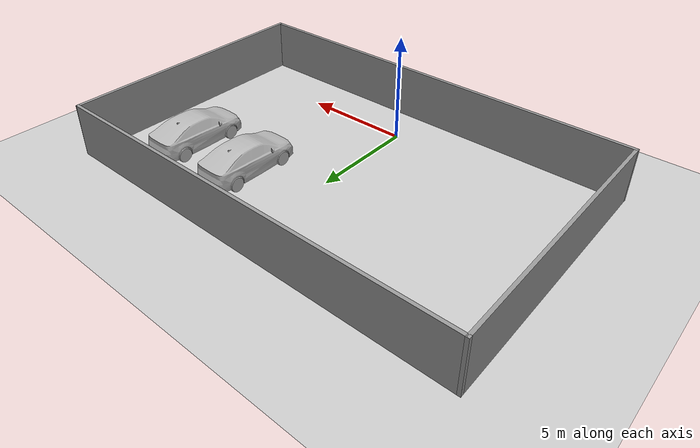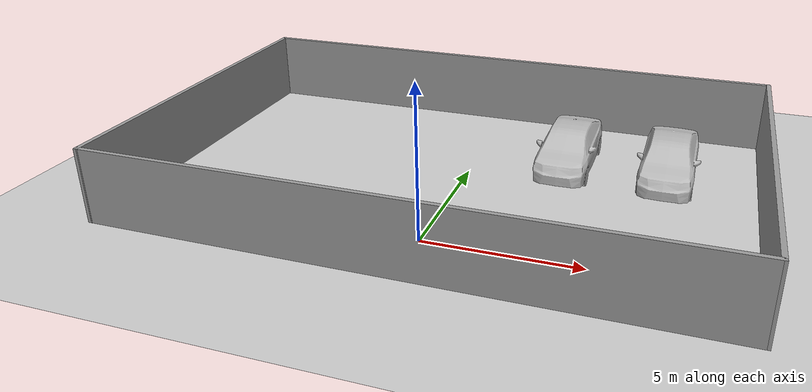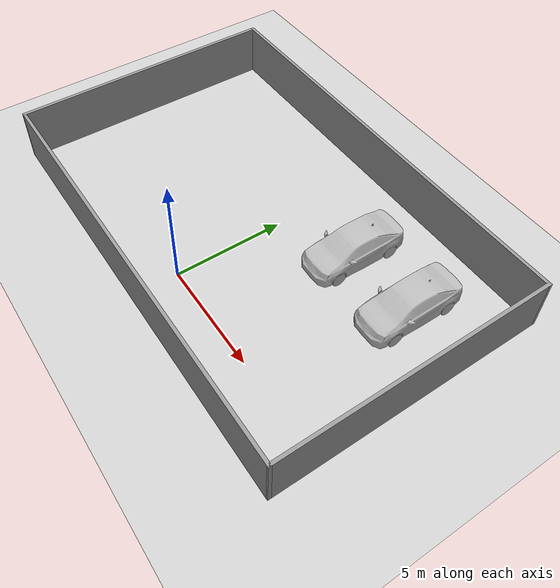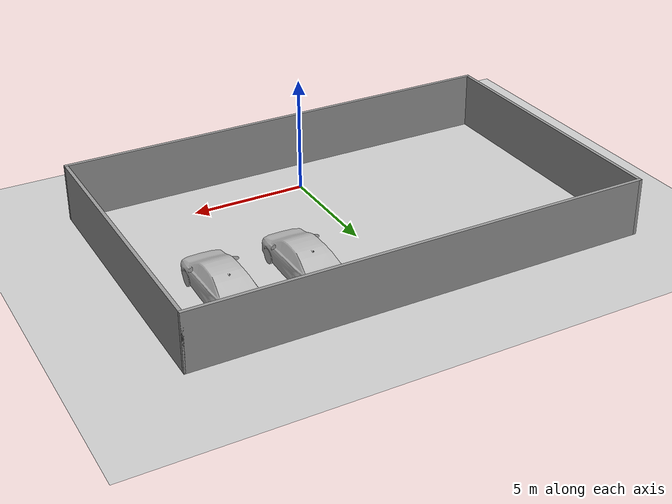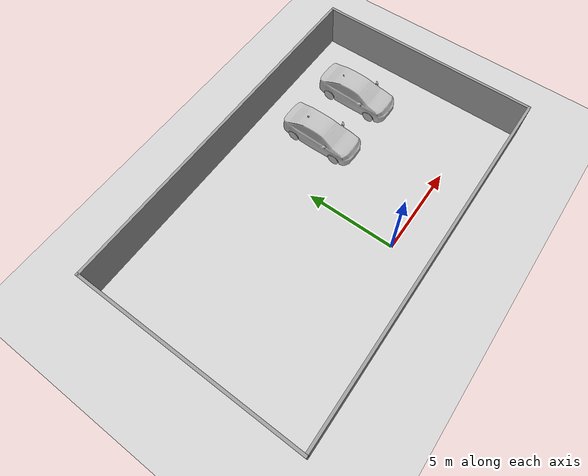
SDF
<sdf version="1.6">
 <world name="default">
  <light name="sun" type="directional">
   <pose>0 0 10 0 -0 0</pose>
   <diffuse>0.8 0.8 0.8 1</diffuse>
   <specular>0.2 0.2 0.2 1</specular>
   <attenuation>
    <range>1000</range>
    <constant>0.9</constant>
    <linear>0.01</linear>
    <quadratic>0.001</quadratic>
   </attenuation>
   <direction>-0.5 0.1 -0.9</direction>
  </light>
  <model name="ground_plane">
   <static>1</static>
   <link name="link">
    <collision name="collision">
     <geometry><plane><normal>0 0 1</normal><size>100 100</size></plane></geometry>
     <surface><friction><ode><mu>100</mu><mu2>50</mu2></ode></friction></surface>
    </collision>
    <visual name="visual">
     <cast_shadows>0</cast_shadows>
     <geometry><plane><normal>0 0 1</normal><size>100 100</size></plane></geometry>
     <material>
      <script><uri>file://media/materials/scripts/gazebo.material</uri><name>Gazebo/Grey</name></script>
     </material>
    </visual>
   </link>
  </model>
  <gravity>0 0 -9.8</gravity>
  <magnetic_field>6e-06 2.3e-05 -4.2e-05</magnetic_field>
  <atmosphere type="adiabatic"/>
  <physics name="default_physics" default="0" type="ode">
   <max_step_size>0.001</max_step_size>
   <real_time_factor>1</real_time_factor>
   <real_time_update_rate>1000</real_time_update_rate>
  </physics>
  <scene><ambient>0.4 0.4 0.4 1</ambient><background>0.7 0.7 0.7 1</background><shadows>1</shadows></scene>
  <spherical_coordinates>
   <surface_model>EARTH_WGS84</surface_model>
   <latitude_deg>0</latitude_deg>
   <longitude_deg>0</longitude_deg>
   <elevation>0</elevation>
   <heading_deg>0</heading_deg>
  </spherical_coordinates>
  <model name="park">
   <pose>-0.176874 4.10784 0 0 -0 0</pose>
   <link name="Wall_16">
    <collision name="Wall_16_Collision">
     <geometry><box><size>12.507 0.15 2.5</size></box></geometry>
     <pose>0 0 1.25 0 -0 0</pose>
    </collision>
    <visual name="Wall_16_Visual">
     <pose>0 0 1.25 0 -0 0</pose>
     <geometry><box><size>12.507 0.15 2.5</size></box></geometry>
     <material>
      <script><uri>file://media/materials/scripts/gazebo.material</uri><name>Gazebo/Grey</name></script>
      <ambient>1 1 1 1</ambient>
     </material>
     <meta><layer>0</layer></meta>
    </visual>
    <pose>-9.86413 1.2e-05 0 0 -0 -1.5708</pose>
   </link>
   <link name="Wall_18">
    <collision name="Wall_18_Collision">
     <geometry><box><size>12.5 0.15 2.5</size></box></geometry>
     <pose>0 0 1.25 0 -0 0</pose>
    </collision>
    <visual name="Wall_18_Visual">
     <pose>0 0 1.25 0 -0 0</pose>
     <geometry><box><size>12.5 0.15 2.5</size></box></geometry>
     <material>
      <script><uri>file://media/materials/scripts/gazebo.material</uri><name>Gazebo/Grey</name></script>
      <ambient>1 1 1 1</ambient>
     </material>
     <meta><layer>0</layer></meta>
    </visual>
    <pose>9.86413 0.003255 0 0 -0 1.5708</pose>
   </link>
   <link name="Wall_19">
    <collision name="Wall_19_Collision">
     <geometry><box><size>19.8783 0.15 2.5</size></box></geometry>
     <pose>0 0 1.25 0 -0 0</pose>
    </collision>
    <visual name="Wall_19_Visual">
     <pose>0 0 1.25 0 -0 0</pose>
     <geometry><box><size>19.8783 0.15 2.5</size></box></geometry>
     <material>
      <script><uri>file://media/materials/scripts/gazebo.material</uri><name>Gazebo/Grey</name></script>
      <ambient>1 1 1 1</ambient>
     </material>
     <meta><layer>0</layer></meta>
    </visual>
    <pose>0 6.17838 0 0 -0 3.14158</pose>
   </link>
   <link name="Wall_21">
    <collision name="Wall_21_Collision">
     <geometry><box><size>19.8791 0.15 2.5</size></box></geometry>
     <pose>0 0 1.25 0 -0 0</pose>
    </collision>
    <visual name="Wall_21_Visual">
     <pose>0 0 1.25 0 -0 0</pose>
     <geometry><box><size>19.8791 0.15 2.5</size></box></geometry>
     <material>
      <script><uri>file://media/materials/scripts/gazebo.material</uri><name>Gazebo/Grey</name></script>
      <ambient>1 1 1 1</ambient>
     </material>
     <meta><layer>0</layer></meta>
    </visual>
    <pose>0 -6.17512 0 0 -0 -3.14125</pose>
   </link>
   <static>1</static>
  </model>
  <model name="car_model_1">
   <link name="link_1">
    <inertial>
     <mass>1</mass>
     <inertia>
      <ixx>0.166667</ixx>
      <ixy>0</ixy>
      <ixz>0</ixz>
      <iyy>0.166667</iyy>
      <iyz>0</iyz>
      <izz>0.166667</izz>
     </inertia>
    </inertial>
    <visual name="visual">
     <pose>0 0 0.2 0 -0 0</pose>
     <geometry>
      <mesh><uri>model://car_model_1/meshes/car_model_1.obj</uri><scale>0.057 0.057 0.057</scale></mesh>
     </geometry>
     <material>
      <script>
       <uri>model://car_model_1/materials/scripts</uri>
       <uri>model://car_model_1/materials/textures</uri>
       <name>carModel1Mat/Sheet</name>
      </script>
     </material>
    </visual>
    <collision name="collision">
     <pose>0 0 0.2 0 -0 0</pose>
     <geometry>
      <mesh><uri>model://car_model_1/meshes/car_model_1.obj</uri><scale>0.052 0.052 0.052</scale></mesh>
     </geometry>
     <surface>
      <friction>
       <ode><mu>1</mu><mu2>1</mu2><fdir1>0 0 0</fdir1><slip1>0</slip1><slip2>0</slip2></ode>
       <torsional>
        <coefficient>1</coefficient>
        <patch_radius>0</patch_radius>
        <surface_radius>0</surface_radius>
        <use_patch_radius>1</use_patch_radius>
        <ode><slip>0</slip></ode>
       </torsional>
      </friction>
      <bounce><restitution_coefficient>0</restitution_coefficient><threshold>1e+06</threshold></bounce>
      <contact>
       <collide_without_contact>0</collide_without_contact>
       <collide_without_contact_bitmask>1</collide_without_contact_bitmask>
       <collide_bitmask>1</collide_bitmask>
       <ode>
        <soft_cfm>0</soft_cfm>
        <soft_erp>0.2</soft_erp>
        <kp>1e+13</kp>
        <kd>1</kd>
        <max_vel>0.01</max_vel>
        <min_depth>0</min_depth>
       </ode>
       <bullet>
        <split_impulse>1</split_impulse>
        <split_impulse_penetration_threshold>-0.01</split_impulse_penetration_threshold>
        <soft_cfm>0</soft_cfm>
        <soft_erp>0.2</soft_erp>
        <kp>1e+13</kp>
        <kd>1</kd>
       </bullet>
      </contact>
     </surface>
    </collision>
   </link>
   <static>0</static>
   <pose>6.6605 6.52088 0 0 -0 1.56236</pose>
  </model>
  <model name="car_model_1_clone">
   <link name="link_1">
    <inertial>
     <mass>1</mass>
     <inertia>
      <ixx>0.166667</ixx>
      <ixy>0</ixy>
      <ixz>0</ixz>
      <iyy>0.166667</iyy>
      <iyz>0</iyz>
      <izz>0.166667</izz>
     </inertia>
    </inertial>
    <visual name="visual">
     <pose>0 0 0.2 0 -0 0</pose>
     <geometry>
      <mesh><uri>model://car_model_1/meshes/car_model_1.obj</uri><scale>0.057 0.057 0.057</scale></mesh>
     </geometry>
     <material>
      <script>
       <uri>model://car_model_1/materials/scripts</uri>
       <uri>model://car_model_1/materials/textures</uri>
       <name>carModel1Mat/Sheet</name>
      </script>
     </material>
    </visual>
    <collision name="collision">
     <pose>0 0 0.2 0 -0 0</pose>
     <geometry>
      <mesh><uri>model://car_model_1/meshes/car_model_1.obj</uri><scale>0.052 0.052 0.052</scale></mesh>
     </geometry>
     <surface>
      <friction>
       <ode><mu>1</mu><mu2>1</mu2><fdir1>0 0 0</fdir1><slip1>0</slip1><slip2>0</slip2></ode>
       <torsional>
        <coefficient>1</coefficient>
        <patch_radius>0</patch_radius>
        <surface_radius>0</surface_radius>
        <use_patch_radius>1</use_patch_radius>
        <ode><slip>0</slip></ode>
       </torsional>
      </friction>
      <bounce><restitution_coefficient>0</restitution_coefficient><threshold>1e+06</threshold></bounce>
      <contact>
       <collide_without_contact>0</collide_without_contact>
       <collide_without_contact_bitmask>1</collide_without_contact_bitmask>
       <collide_bitmask>1</collide_bitmask>
       <ode>
        <soft_cfm>0</soft_cfm>
        <soft_erp>0.2</soft_erp>
        <kp>1e+13</kp>
        <kd>1</kd>
        <max_vel>0.01</max_vel>
        <min_depth>0</min_depth>
       </ode>
       <bullet>
        <split_impulse>1</split_impulse>
        <split_impulse_penetration_threshold>-0.01</split_impulse_penetration_threshold>
        <soft_cfm>0</soft_cfm>
        <soft_erp>0.2</soft_erp>
        <kp>1e+13</kp>
        <kd>1</kd>
       </bullet>
      </contact>
     </surface>
    </collision>
   </link>
   <static>0</static>
   <pose>3.22325 6.52289 0 0 -0 1.56236</pose>
  </model>
 </world>
</sdf>
